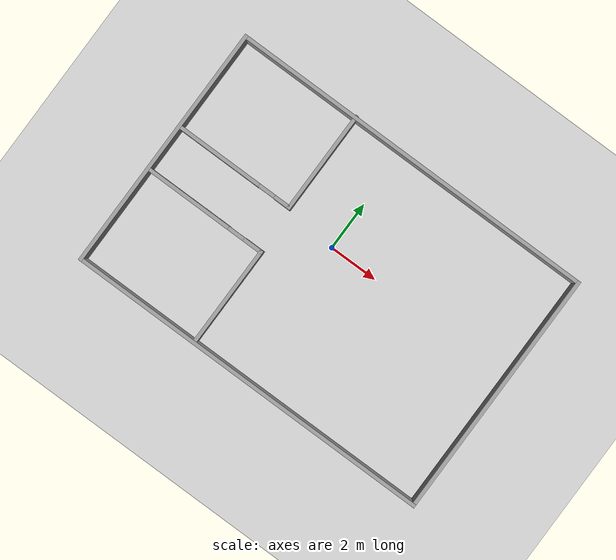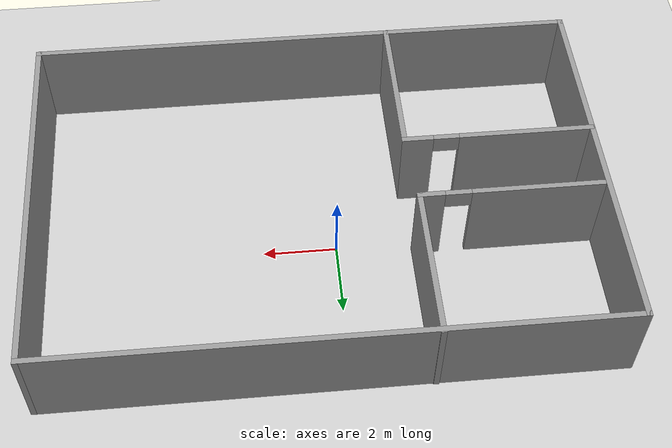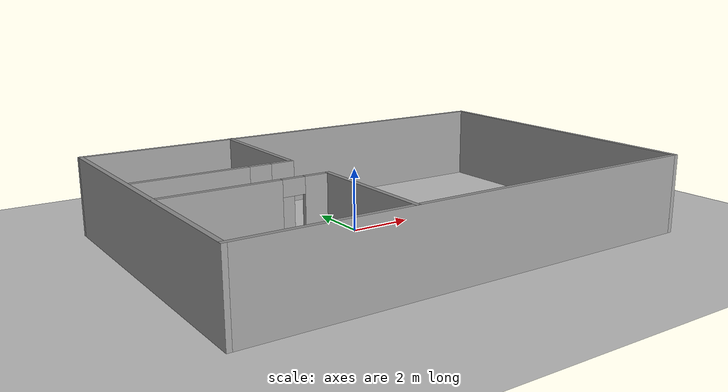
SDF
<sdf version="1.7">
 <world name="default">
  <light name="sun" type="directional">
   <pose>0 0 10 0 -0 0</pose>
   <diffuse>0.8 0.8 0.8 1</diffuse>
   <specular>0.2 0.2 0.2 1</specular>
   <attenuation>
    <range>1000</range>
    <constant>0.9</constant>
    <linear>0.01</linear>
    <quadratic>0.001</quadratic>
   </attenuation>
   <direction>-0.5 0.1 -0.9</direction>
   <spot><inner_angle>0</inner_angle><outer_angle>0</outer_angle><falloff>0</falloff></spot>
  </light>
  <model name="ground_plane">
   <static>1</static>
   <link name="link">
    <collision name="collision">
     <geometry><plane><normal>0 0 1</normal><size>100 100</size></plane></geometry>
     <surface>
      <contact><collide_bitmask>65535</collide_bitmask></contact>
      <friction><ode><mu>100</mu><mu2>50</mu2></ode></friction>
     </surface>
    </collision>
    <visual name="visual">
     <cast_shadows>0</cast_shadows>
     <geometry><plane><normal>0 0 1</normal><size>100 100</size></plane></geometry>
     <material>
      <script><uri>file://media/materials/scripts/gazebo.material</uri><name>Gazebo/Grey</name></script>
     </material>
    </visual>
   </link>
  </model>
  <gravity>0 0 -9.8</gravity>
  <magnetic_field>6e-06 2.3e-05 -4.2e-05</magnetic_field>
  <atmosphere type="adiabatic"/>
  <physics type="ode">
   <max_step_size>0.001</max_step_size>
   <real_time_factor>1</real_time_factor>
   <real_time_update_rate>1000</real_time_update_rate>
  </physics>
  <scene><ambient>0.4 0.4 0.4 1</ambient><background>0.7 0.7 0.7 1</background><shadows>1</shadows></scene>
  <spherical_coordinates>
   <surface_model>EARTH_WGS84</surface_model>
   <latitude_deg>0</latitude_deg>
   <longitude_deg>0</longitude_deg>
   <elevation>0</elevation>
   <heading_deg>0</heading_deg>
  </spherical_coordinates>
  <model name="house">
   <pose>0.446419 -0.728933 0 0 -0 0</pose>
   <link name="Wall_0">
    <collision name="Wall_0_Collision">
     <geometry><box><size>10.25 0.15 2.5</size></box></geometry>
     <pose>0 0 1.25 0 -0 0</pose>
    </collision>
    <visual name="Wall_0_Visual">
     <pose>0 0 1.25 0 -0 0</pose>
     <geometry><box><size>10.25 0.15 2.5</size></box></geometry>
     <material>
      <script><uri>file://media/materials/scripts/gazebo.material</uri><name>Gazebo/Grey</name></script>
      <ambient>1 1 1 1</ambient>
     </material>
     <meta><layer>0</layer></meta>
    </visual>
    <pose>-7.55 -0.015085 0 0 -0 -1.5708</pose>
   </link>
   <link name="Wall_1">
    <collision name="Wall_1_Collision">
     <geometry><box><size>15.25 0.15 2.5</size></box></geometry>
     <pose>0 0 1.25 0 -0 0</pose>
    </collision>
    <visual name="Wall_1_Visual">
     <pose>0 0 1.25 0 -0 0</pose>
     <geometry><box><size>15.25 0.15 2.5</size></box></geometry>
     <material>
      <script><uri>file://media/materials/scripts/gazebo.material</uri><name>Gazebo/Grey</name></script>
      <ambient>1 1 1 1</ambient>
     </material>
     <meta><layer>0</layer></meta>
    </visual>
    <pose>0 -5.06508 0 0 -0 0</pose>
   </link>
   <link name="Wall_2">
    <collision name="Wall_2_Collision">
     <geometry><box><size>10.25 0.15 2.5</size></box></geometry>
     <pose>0 0 1.25 0 -0 0</pose>
    </collision>
    <visual name="Wall_2_Visual">
     <pose>0 0 1.25 0 -0 0</pose>
     <geometry><box><size>10.25 0.15 2.5</size></box></geometry>
     <material>
      <script><uri>file://media/materials/scripts/gazebo.material</uri><name>Gazebo/Grey</name></script>
      <ambient>1 1 1 1</ambient>
     </material>
     <meta><layer>0</layer></meta>
    </visual>
    <pose>7.55 -0.015085 0 0 -0 1.5708</pose>
   </link>
   <link name="Wall_3">
    <collision name="Wall_3_Collision">
     <geometry><box><size>15.25 0.15 2.5</size></box></geometry>
     <pose>0 0 1.25 0 -0 0</pose>
    </collision>
    <visual name="Wall_3_Visual">
     <pose>0 0 1.25 0 -0 0</pose>
     <geometry><box><size>15.25 0.15 2.5</size></box></geometry>
     <material>
      <script><uri>file://media/materials/scripts/gazebo.material</uri><name>Gazebo/Grey</name></script>
      <ambient>1 1 1 1</ambient>
     </material>
     <meta><layer>0</layer></meta>
    </visual>
    <pose>0 5.03491 0 0 -0 3.14159</pose>
   </link>
   <link name="Wall_5">
    <pose>-4.9734 -0.950129 0 0 -0 0</pose>
    <visual name="Wall_5_Visual_0">
     <pose>-0.780785 0 1.25 0 -0 0</pose>
     <geometry><box><size>3.68843 0.15 2.5</size></box></geometry>
     <material>
      <script><uri>file://media/materials/scripts/gazebo.material</uri><name>Gazebo/Grey</name></script>
      <ambient>1 1 1 1</ambient>
     </material>
     <meta><layer>0</layer></meta>
    </visual>
    <collision name="Wall_5_Collision_0">
     <geometry><box><size>3.68843 0.15 2.5</size></box></geometry>
     <pose>-0.780785 0 1.25 0 -0 0</pose>
    </collision>
    <visual name="Wall_5_Visual_1">
     <pose>2.19421 0 1.25 0 -0 0</pose>
     <geometry><box><size>0.86157 0.15 2.5</size></box></geometry>
     <material>
      <script><uri>file://media/materials/scripts/gazebo.material</uri><name>Gazebo/Grey</name></script>
      <ambient>1 1 1 1</ambient>
     </material>
     <meta><layer>0</layer></meta>
    </visual>
    <collision name="Wall_5_Collision_1">
     <geometry><box><size>0.86157 0.15 2.5</size></box></geometry>
     <pose>2.19421 0 1.25 0 -0 0</pose>
    </collision>
    <visual name="Wall_5_Visual_2">
     <pose>1.41343 0 2.25 0 -0 0</pose>
     <geometry><box><size>0.7 0.15 0.5</size></box></geometry>
     <material>
      <script><uri>file://media/materials/scripts/gazebo.material</uri><name>Gazebo/Grey</name></script>
      <ambient>1 1 1 1</ambient>
     </material>
     <meta><layer>0</layer></meta>
    </visual>
    <collision name="Wall_5_Collision_2">
     <geometry><box><size>0.7 0.15 0.5</size></box></geometry>
     <pose>1.41343 0 2.25 0 -0 0</pose>
    </collision>
   </link>
   <link name="Wall_6">
    <collision name="Wall_6_Collision">
     <geometry><box><size>4.25 0.15 2.5</size></box></geometry>
     <pose>0 0 1.25 0 -0 0</pose>
    </collision>
    <visual name="Wall_6_Visual">
     <pose>0 0 1.25 0 -0 0</pose>
     <geometry><box><size>4.25 0.15 2.5</size></box></geometry>
     <material>
      <script><uri>file://media/materials/scripts/gazebo.material</uri><name>Gazebo/Grey</name></script>
      <ambient>1 1 1 1</ambient>
     </material>
     <meta><layer>0</layer></meta>
    </visual>
    <pose>-2.4234 -3.00013 0 0 -0 -1.5708</pose>
   </link>
   <link name="Wall_8">
    <pose>-4.992 0.965085 0 0 -0 0</pose>
    <visual name="Wall_8_Visual_0">
     <pose>-0.722286 0 1.25 0 -0 0</pose>
     <geometry><box><size>3.55543 0.15 2.5</size></box></geometry>
     <material>
      <script><uri>file://media/materials/scripts/gazebo.material</uri><name>Gazebo/Grey</name></script>
      <ambient>1 1 1 1</ambient>
     </material>
     <meta><layer>0</layer></meta>
    </visual>
    <collision name="Wall_8_Collision_0">
     <geometry><box><size>3.55543 0.15 2.5</size></box></geometry>
     <pose>-0.722286 0 1.25 0 -0 0</pose>
    </collision>
    <visual name="Wall_8_Visual_1">
     <pose>2.12771 0 1.25 0 -0 0</pose>
     <geometry><box><size>0.744571 0.15 2.5</size></box></geometry>
     <material>
      <script><uri>file://media/materials/scripts/gazebo.material</uri><name>Gazebo/Grey</name></script>
      <ambient>1 1 1 1</ambient>
     </material>
     <meta><layer>0</layer></meta>
    </visual>
    <collision name="Wall_8_Collision_1">
     <geometry><box><size>0.744571 0.15 2.5</size></box></geometry>
     <pose>2.12771 0 1.25 0 -0 0</pose>
    </collision>
    <visual name="Wall_8_Visual_2">
     <pose>1.40543 0 2.25 0 -0 0</pose>
     <geometry><box><size>0.7 0.15 0.5</size></box></geometry>
     <material>
      <script><uri>file://media/materials/scripts/gazebo.material</uri><name>Gazebo/Grey</name></script>
      <ambient>1 1 1 1</ambient>
     </material>
     <meta><layer>0</layer></meta>
    </visual>
    <collision name="Wall_8_Collision_2">
     <geometry><box><size>0.7 0.15 0.5</size></box></geometry>
     <pose>1.40543 0 2.25 0 -0 0</pose>
    </collision>
   </link>
   <link name="Wall_9">
    <collision name="Wall_9_Collision">
     <geometry><box><size>4.25 0.15 2.5</size></box></geometry>
     <pose>0 0 1.25 0 -0 0</pose>
    </collision>
    <visual name="Wall_9_Visual">
     <pose>0 0 1.25 0 -0 0</pose>
     <geometry><box><size>4.25 0.15 2.5</size></box></geometry>
     <material>
      <script><uri>file://media/materials/scripts/gazebo.material</uri><name>Gazebo/Grey</name></script>
      <ambient>1 1 1 1</ambient>
     </material>
     <meta><layer>0</layer></meta>
    </visual>
    <pose>-2.567 3.01509 0 0 -0 1.5708</pose>
   </link>
   <static>1</static>
  </model>
 </world>
</sdf>
